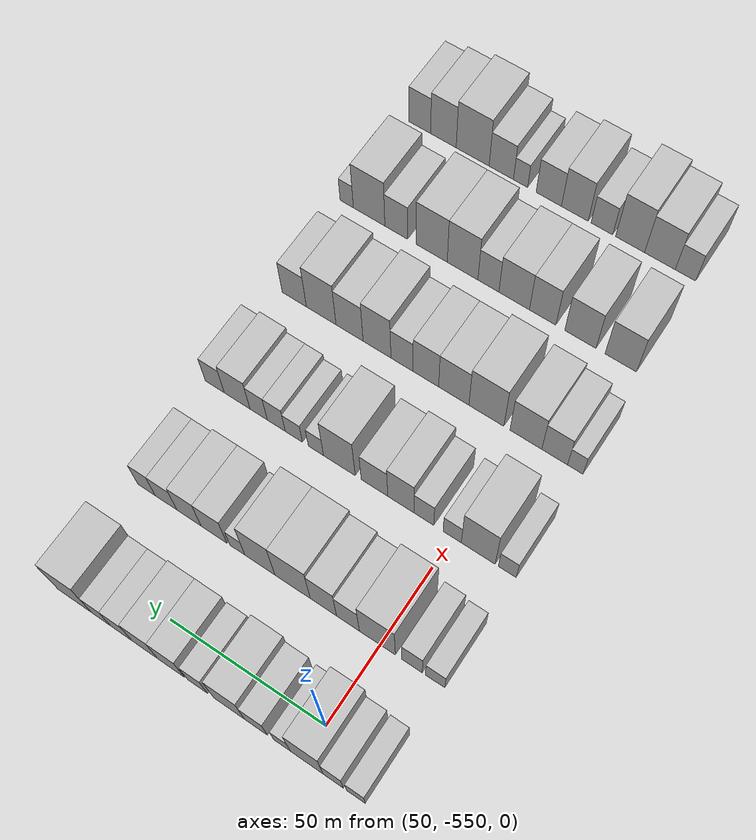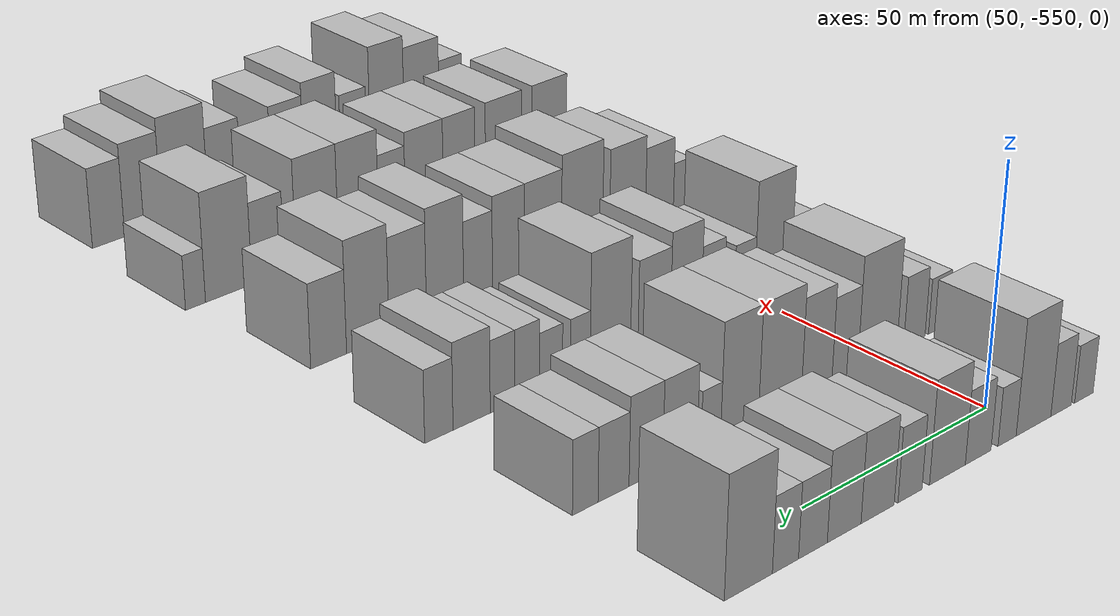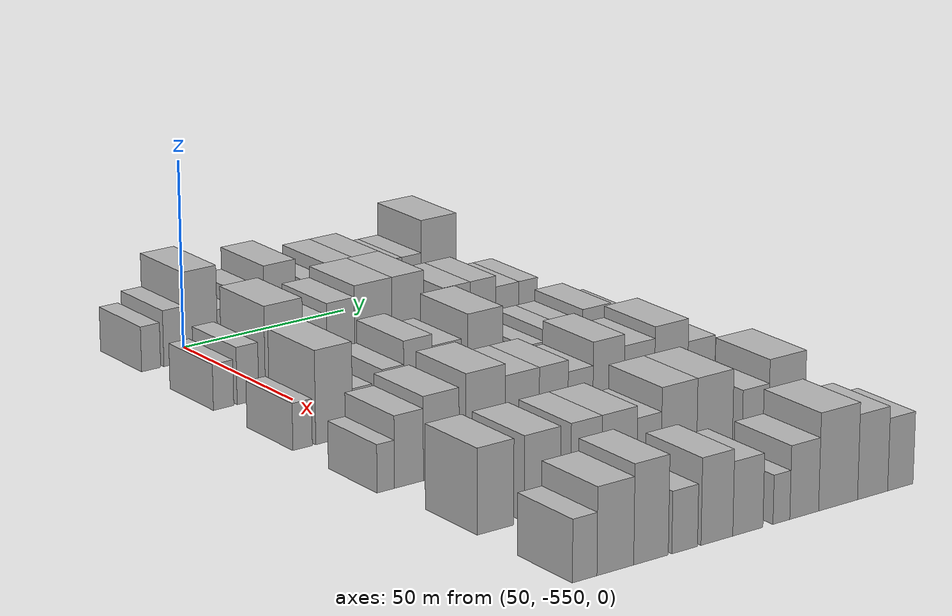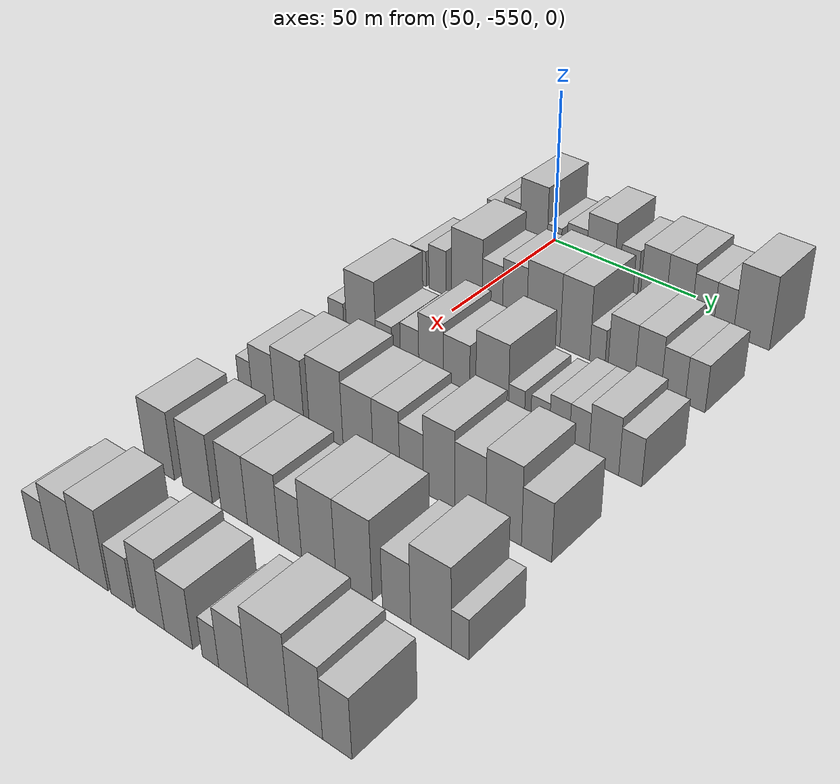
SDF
<sdf version="1.6">
 <world name="default">
  <model name="building_1">
   <static>1</static>
   <pose>50.0000 -566.1799 0 0.000000 0.000000 0.000000</pose>
   <link name="link">
    <pose>0 0 6.00 0 0 0</pose>
    <collision name="collision"><geometry><box><size>20.0000 5.6401 12.0000</size></box></geometry></collision>
    <visual name="visual">
     <cast_shadows>0</cast_shadows>
     <geometry><box><size>20.0000 5.6401 12.0000</size></box></geometry>
     <material>
      <script>
       <uri>model://HANNAS_wall/materials/scripts</uri>
       <uri>model://HANNAS_wall/materials/textures</uri>
       <name>vrc/HANNAS_wall</name>
      </script>
     </material>
    </visual>
   </link>
  </model>
  <model name="building_2">
   <static>1</static>
   <pose>50.0000 -559.2902 0 0.000000 0.000000 0.000000</pose>
   <link name="link">
    <pose>0 0 7.50 0 0 0</pose>
    <collision name="collision"><geometry><box><size>20.0000 6.1393 15.0000</size></box></geometry></collision>
    <visual name="visual">
     <cast_shadows>0</cast_shadows>
     <geometry><box><size>20.0000 6.1393 15.0000</size></box></geometry>
     <material>
      <script>
       <uri>model://HANNAS_wall/materials/scripts</uri>
       <uri>model://HANNAS_wall/materials/textures</uri>
       <name>vrc/HANNAS_wall</name>
      </script>
     </material>
    </visual>
   </link>
  </model>
  <model name="building_3">
   <static>1</static>
   <pose>50.0000 -551.1450 0 0.000000 0.000000 0.000000</pose>
   <link name="link">
    <pose>0 0 12.00 0 0 0</pose>
    <collision name="collision"><geometry><box><size>20.0000 10.1512 24.0000</size></box></geometry></collision>
    <visual name="visual">
     <cast_shadows>0</cast_shadows>
     <geometry><box><size>20.0000 10.1512 24.0000</size></box></geometry>
     <material>
      <script>
       <uri>model://HANNAS_wall/materials/scripts</uri>
       <uri>model://HANNAS_wall/materials/textures</uri>
       <name>vrc/HANNAS_wall</name>
      </script>
     </material>
    </visual>
   </link>
  </model>
  <model name="building_4">
   <static>1</static>
   <pose>50.0000 -543.4616 0 0.000000 0.000000 0.000000</pose>
   <link name="link">
    <pose>0 0 6.00 0 0 0</pose>
    <collision name="collision"><geometry><box><size>20.0000 5.2155 12.0000</size></box></geometry></collision>
    <visual name="visual">
     <cast_shadows>0</cast_shadows>
     <geometry><box><size>20.0000 5.2155 12.0000</size></box></geometry>
     <material>
      <script>
       <uri>model://HANNAS_wall/materials/scripts</uri>
       <uri>model://HANNAS_wall/materials/textures</uri>
       <name>vrc/HANNAS_wall</name>
      </script>
     </material>
    </visual>
   </link>
  </model>
  <model name="building_5">
   <static>1</static>
   <pose>50.0000 -535.2518 0 0.000000 0.000000 0.000000</pose>
   <link name="link">
    <pose>0 0 7.50 0 0 0</pose>
    <collision name="collision"><geometry><box><size>20.0000 7.2042 15.0000</size></box></geometry></collision>
    <visual name="visual">
     <cast_shadows>0</cast_shadows>
     <geometry><box><size>20.0000 7.2042 15.0000</size></box></geometry>
     <material>
      <script>
       <uri>model://HANNAS_wall/materials/scripts</uri>
       <uri>model://HANNAS_wall/materials/textures</uri>
       <name>vrc/HANNAS_wall</name>
      </script>
     </material>
    </visual>
   </link>
  </model>
  <model name="building_6">
   <static>1</static>
   <pose>50.0000 -526.7217 0 0.000000 0.000000 0.000000</pose>
   <link name="link">
    <pose>0 0 10.50 0 0 0</pose>
    <collision name="collision"><geometry><box><size>20.0000 9.8559 21.0000</size></box></geometry></collision>
    <visual name="visual">
     <cast_shadows>0</cast_shadows>
     <geometry><box><size>20.0000 9.8559 21.0000</size></box></geometry>
     <material>
      <script>
       <uri>model://HANNAS_wall/materials/scripts</uri>
       <uri>model://HANNAS_wall/materials/textures</uri>
       <name>vrc/HANNAS_wall</name>
      </script>
     </material>
    </visual>
   </link>
  </model>
  <model name="building_7">
   <static>1</static>
   <pose>50.0000 -516.5821 0 0.000000 0.000000 0.000000</pose>
   <link name="link">
    <pose>0 0 7.50 0 0 0</pose>
    <collision name="collision"><geometry><box><size>20.0000 6.4233 15.0000</size></box></geometry></collision>
    <visual name="visual">
     <cast_shadows>0</cast_shadows>
     <geometry><box><size>20.0000 6.4233 15.0000</size></box></geometry>
     <material>
      <script>
       <uri>model://HANNAS_wall/materials/scripts</uri>
       <uri>model://HANNAS_wall/materials/textures</uri>
       <name>vrc/HANNAS_wall</name>
      </script>
     </material>
    </visual>
   </link>
  </model>
  <model name="building_8">
   <static>1</static>
   <pose>50.0000 -508.0440 0 0.000000 0.000000 0.000000</pose>
   <link name="link">
    <pose>0 0 9.00 0 0 0</pose>
    <collision name="collision"><geometry><box><size>20.0000 8.6530 18.0000</size></box></geometry></collision>
    <visual name="visual">
     <cast_shadows>0</cast_shadows>
     <geometry><box><size>20.0000 8.6530 18.0000</size></box></geometry>
     <material>
      <script>
       <uri>model://HANNAS_wall/materials/scripts</uri>
       <uri>model://HANNAS_wall/materials/textures</uri>
       <name>vrc/HANNAS_wall</name>
      </script>
     </material>
    </visual>
   </link>
  </model>
  <model name="building_9">
   <static>1</static>
   <pose>50.0000 -499.4215 0 0.000000 0.000000 0.000000</pose>
   <link name="link">
    <pose>0 0 9.00 0 0 0</pose>
    <collision name="collision"><geometry><box><size>20.0000 8.5920 18.0000</size></box></geometry></collision>
    <visual name="visual">
     <cast_shadows>0</cast_shadows>
     <geometry><box><size>20.0000 8.5920 18.0000</size></box></geometry>
     <material>
      <script>
       <uri>model://HANNAS_wall/materials/scripts</uri>
       <uri>model://HANNAS_wall/materials/textures</uri>
       <name>vrc/HANNAS_wall</name>
      </script>
     </material>
    </visual>
   </link>
  </model>
  <model name="building_10">
   <static>1</static>
   <pose>50.0000 -491.5432 0 0.000000 0.000000 0.000000</pose>
   <link name="link">
    <pose>0 0 7.50 0 0 0</pose>
    <collision name="collision"><geometry><box><size>20.0000 7.1645 15.0000</size></box></geometry></collision>
    <visual name="visual">
     <cast_shadows>0</cast_shadows>
     <geometry><box><size>20.0000 7.1645 15.0000</size></box></geometry>
     <material>
      <script>
       <uri>model://HANNAS_wall/materials/scripts</uri>
       <uri>model://HANNAS_wall/materials/textures</uri>
       <name>vrc/HANNAS_wall</name>
      </script>
     </material>
    </visual>
   </link>
  </model>
  <model name="building_11">
   <static>1</static>
   <pose>50.0000 -484.7730 0 0.000000 0.000000 0.000000</pose>
   <link name="link">
    <pose>0 0 7.50 0 0 0</pose>
    <collision name="collision"><geometry><box><size>20.0000 6.3760 15.0000</size></box></geometry></collision>
    <visual name="visual">
     <cast_shadows>0</cast_shadows>
     <geometry><box><size>20.0000 6.3760 15.0000</size></box></geometry>
     <material>
      <script>
       <uri>model://HANNAS_wall/materials/scripts</uri>
       <uri>model://HANNAS_wall/materials/textures</uri>
       <name>vrc/HANNAS_wall</name>
      </script>
     </material>
    </visual>
   </link>
  </model>
  <model name="building_12">
   <static>1</static>
   <pose>50.0000 -475.8655 0 0.000000 0.000000 0.000000</pose>
   <link name="link">
    <pose>0 0 12.00 0 0 0</pose>
    <collision name="collision"><geometry><box><size>20.0000 11.4389 24.0000</size></box></geometry></collision>
    <visual name="visual">
     <cast_shadows>0</cast_shadows>
     <geometry><box><size>20.0000 11.4389 24.0000</size></box></geometry>
     <material>
      <script>
       <uri>model://HANNAS_wall/materials/scripts</uri>
       <uri>model://HANNAS_wall/materials/textures</uri>
       <name>vrc/HANNAS_wall</name>
      </script>
     </material>
    </visual>
   </link>
  </model>
  <model name="building_129">
   <static>1</static>
   <pose>85.0000 -567.0119 0 0.000000 0.000000 0.000000</pose>
   <link name="link">
    <pose>0 0 6.00 0 0 0</pose>
    <collision name="collision"><geometry><box><size>20.0000 5.9761 12.0000</size></box></geometry></collision>
    <visual name="visual">
     <cast_shadows>0</cast_shadows>
     <geometry><box><size>20.0000 5.9761 12.0000</size></box></geometry>
     <material>
      <script>
       <uri>model://HANNAS_wall/materials/scripts</uri>
       <uri>model://HANNAS_wall/materials/textures</uri>
       <name>vrc/HANNAS_wall</name>
      </script>
     </material>
    </visual>
   </link>
  </model>
  <model name="building_130">
   <static>1</static>
   <pose>85.0000 -559.8235 0 0.000000 0.000000 0.000000</pose>
   <link name="link">
    <pose>0 0 7.50 0 0 0</pose>
    <collision name="collision"><geometry><box><size>20.0000 6.4009 15.0000</size></box></geometry></collision>
    <visual name="visual">
     <cast_shadows>0</cast_shadows>
     <geometry><box><size>20.0000 6.4009 15.0000</size></box></geometry>
     <material>
      <script>
       <uri>model://HANNAS_wall/materials/scripts</uri>
       <uri>model://HANNAS_wall/materials/textures</uri>
       <name>vrc/HANNAS_wall</name>
      </script>
     </material>
    </visual>
   </link>
  </model>
  <model name="building_131">
   <static>1</static>
   <pose>85.0000 -548.9372 0 0.000000 0.000000 0.000000</pose>
   <link name="link">
    <pose>0 0 12.00 0 0 0</pose>
    <collision name="collision"><geometry><box><size>20.0000 11.3717 24.0000</size></box></geometry></collision>
    <visual name="visual">
     <cast_shadows>0</cast_shadows>
     <geometry><box><size>20.0000 11.3717 24.0000</size></box></geometry>
     <material>
      <script>
       <uri>model://HANNAS_wall/materials/scripts</uri>
       <uri>model://HANNAS_wall/materials/textures</uri>
       <name>vrc/HANNAS_wall</name>
      </script>
     </material>
    </visual>
   </link>
  </model>
  <model name="building_132">
   <static>1</static>
   <pose>85.0000 -539.6117 0 0.000000 0.000000 0.000000</pose>
   <link name="link">
    <pose>0 0 9.00 0 0 0</pose>
    <collision name="collision"><geometry><box><size>20.0000 7.2792 18.0000</size></box></geometry></collision>
    <visual name="visual">
     <cast_shadows>0</cast_shadows>
     <geometry><box><size>20.0000 7.2792 18.0000</size></box></geometry>
     <material>
      <script>
       <uri>model://HANNAS_wall/materials/scripts</uri>
       <uri>model://HANNAS_wall/materials/textures</uri>
       <name>vrc/HANNAS_wall</name>
      </script>
     </material>
    </visual>
   </link>
  </model>
  <model name="building_133">
   <static>1</static>
   <pose>85.0000 -531.7372 0 0.000000 0.000000 0.000000</pose>
   <link name="link">
    <pose>0 0 10.50 0 0 0</pose>
    <collision name="collision"><geometry><box><size>20.0000 8.4700 21.0000</size></box></geometry></collision>
    <visual name="visual">
     <cast_shadows>0</cast_shadows>
     <geometry><box><size>20.0000 8.4700 21.0000</size></box></geometry>
     <material>
      <script>
       <uri>model://HANNAS_wall/materials/scripts</uri>
       <uri>model://HANNAS_wall/materials/textures</uri>
       <name>vrc/HANNAS_wall</name>
      </script>
     </material>
    </visual>
   </link>
  </model>
  <model name="building_134">
   <static>1</static>
   <pose>85.0000 -521.7231 0 0.000000 0.000000 0.000000</pose>
   <link name="link">
    <pose>0 0 12.00 0 0 0</pose>
    <collision name="collision"><geometry><box><size>20.0000 11.5580 24.0000</size></box></geometry></collision>
    <visual name="visual">
     <cast_shadows>0</cast_shadows>
     <geometry><box><size>20.0000 11.5580 24.0000</size></box></geometry>
     <material>
      <script>
       <uri>model://HANNAS_wall/materials/scripts</uri>
       <uri>model://HANNAS_wall/materials/textures</uri>
       <name>vrc/HANNAS_wall</name>
      </script>
     </material>
    </visual>
   </link>
  </model>
  <model name="building_135">
   <static>1</static>
   <pose>85.0000 -510.9765 0 0.000000 0.000000 0.000000</pose>
   <link name="link">
    <pose>0 0 12.00 0 0 0</pose>
    <collision name="collision"><geometry><box><size>20.0000 9.9353 24.0000</size></box></geometry></collision>
    <visual name="visual">
     <cast_shadows>0</cast_shadows>
     <geometry><box><size>20.0000 9.9353 24.0000</size></box></geometry>
     <material>
      <script>
       <uri>model://HANNAS_wall/materials/scripts</uri>
       <uri>model://HANNAS_wall/materials/textures</uri>
       <name>vrc/HANNAS_wall</name>
      </script>
     </material>
    </visual>
   </link>
  </model>
  <model name="building_136">
   <static>1</static>
   <pose>85.0000 -503.4930 0 0.000000 0.000000 0.000000</pose>
   <link name="link">
    <pose>0 0 6.00 0 0 0</pose>
    <collision name="collision"><geometry><box><size>20.0000 5.0316 12.0000</size></box></geometry></collision>
    <visual name="visual">
     <cast_shadows>0</cast_shadows>
     <geometry><box><size>20.0000 5.0316 12.0000</size></box></geometry>
     <material>
      <script>
       <uri>model://HANNAS_wall/materials/scripts</uri>
       <uri>model://HANNAS_wall/materials/textures</uri>
       <name>vrc/HANNAS_wall</name>
      </script>
     </material>
    </visual>
   </link>
  </model>
  <model name="building_137">
   <static>1</static>
   <pose>85.0000 -495.6421 0 0.000000 0.000000 0.000000</pose>
   <link name="link">
    <pose>0 0 9.00 0 0 0</pose>
    <collision name="collision"><geometry><box><size>20.0000 8.6703 18.0000</size></box></geometry></collision>
    <visual name="visual">
     <cast_shadows>0</cast_shadows>
     <geometry><box><size>20.0000 8.6703 18.0000</size></box></geometry>
     <material>
      <script>
       <uri>model://HANNAS_wall/materials/scripts</uri>
       <uri>model://HANNAS_wall/materials/textures</uri>
       <name>vrc/HANNAS_wall</name>
      </script>
     </material>
    </visual>
   </link>
  </model>
  <model name="building_138">
   <static>1</static>
   <pose>85.0000 -487.1656 0 0.000000 0.000000 0.000000</pose>
   <link name="link">
    <pose>0 0 9.00 0 0 0</pose>
    <collision name="collision"><geometry><box><size>20.0000 8.2827 18.0000</size></box></geometry></collision>
    <visual name="visual">
     <cast_shadows>0</cast_shadows>
     <geometry><box><size>20.0000 8.2827 18.0000</size></box></geometry>
     <material>
      <script>
       <uri>model://HANNAS_wall/materials/scripts</uri>
       <uri>model://HANNAS_wall/materials/textures</uri>
       <name>vrc/HANNAS_wall</name>
      </script>
     </material>
    </visual>
   </link>
  </model>
  <model name="building_139">
   <static>1</static>
   <pose>85.0000 -479.2963 0 0.000000 0.000000 0.000000</pose>
   <link name="link">
    <pose>0 0 7.50 0 0 0</pose>
    <collision name="collision"><geometry><box><size>20.0000 7.4559 15.0000</size></box></geometry></collision>
    <visual name="visual">
     <cast_shadows>0</cast_shadows>
     <geometry><box><size>20.0000 7.4559 15.0000</size></box></geometry>
     <material>
      <script>
       <uri>model://HANNAS_wall/materials/scripts</uri>
       <uri>model://HANNAS_wall/materials/textures</uri>
       <name>vrc/HANNAS_wall</name>
      </script>
     </material>
    </visual>
   </link>
  </model>
  <model name="building_140">
   <static>1</static>
   <pose>85.0000 -472.5360 0 0.000000 0.000000 0.000000</pose>
   <link name="link">
    <pose>0 0 7.50 0 0 0</pose>
    <collision name="collision"><geometry><box><size>20.0000 6.0648 15.0000</size></box></geometry></collision>
    <visual name="visual">
     <cast_shadows>0</cast_shadows>
     <geometry><box><size>20.0000 6.0648 15.0000</size></box></geometry>
     <material>
      <script>
       <uri>model://HANNAS_wall/materials/scripts</uri>
       <uri>model://HANNAS_wall/materials/textures</uri>
       <name>vrc/HANNAS_wall</name>
      </script>
     </material>
    </visual>
   </link>
  </model>
  <model name="building_255">
   <static>1</static>
   <pose>120.0000 -567.1916 0 0.000000 0.000000 0.000000</pose>
   <link name="link">
    <pose>0 0 6.00 0 0 0</pose>
    <collision name="collision"><geometry><box><size>20.0000 5.6168 12.0000</size></box></geometry></collision>
    <visual name="visual">
     <cast_shadows>0</cast_shadows>
     <geometry><box><size>20.0000 5.6168 12.0000</size></box></geometry>
     <material>
      <script>
       <uri>model://HANNAS_wall/materials/scripts</uri>
       <uri>model://HANNAS_wall/materials/textures</uri>
       <name>vrc/HANNAS_wall</name>
      </script>
     </material>
    </visual>
   </link>
  </model>
  <model name="building_256">
   <static>1</static>
   <pose>120.0000 -557.9877 0 0.000000 0.000000 0.000000</pose>
   <link name="link">
    <pose>0 0 12.00 0 0 0</pose>
    <collision name="collision"><geometry><box><size>20.0000 10.7910 24.0000</size></box></geometry></collision>
    <visual name="visual">
     <cast_shadows>0</cast_shadows>
     <geometry><box><size>20.0000 10.7910 24.0000</size></box></geometry>
     <material>
      <script>
       <uri>model://HANNAS_wall/materials/scripts</uri>
       <uri>model://HANNAS_wall/materials/textures</uri>
       <name>vrc/HANNAS_wall</name>
      </script>
     </material>
    </visual>
   </link>
  </model>
  <model name="building_257">
   <static>1</static>
   <pose>120.0000 -549.6639 0 0.000000 0.000000 0.000000</pose>
   <link name="link">
    <pose>0 0 6.00 0 0 0</pose>
    <collision name="collision"><geometry><box><size>20.0000 5.8565 12.0000</size></box></geometry></collision>
    <visual name="visual">
     <cast_shadows>0</cast_shadows>
     <geometry><box><size>20.0000 5.8565 12.0000</size></box></geometry>
     <material>
      <script>
       <uri>model://HANNAS_wall/materials/scripts</uri>
       <uri>model://HANNAS_wall/materials/textures</uri>
       <name>vrc/HANNAS_wall</name>
      </script>
     </material>
    </visual>
   </link>
  </model>
  <model name="building_258">
   <static>1</static>
   <pose>120.0000 -540.5153 0 0.000000 0.000000 0.000000</pose>
   <link name="link">
    <pose>0 0 7.50 0 0 0</pose>
    <collision name="collision"><geometry><box><size>20.0000 6.4407 15.0000</size></box></geometry></collision>
    <visual name="visual">
     <cast_shadows>0</cast_shadows>
     <geometry><box><size>20.0000 6.4407 15.0000</size></box></geometry>
     <material>
      <script>
       <uri>model://HANNAS_wall/materials/scripts</uri>
       <uri>model://HANNAS_wall/materials/textures</uri>
       <name>vrc/HANNAS_wall</name>
      </script>
     </material>
    </visual>
   </link>
  </model>
  <model name="building_259">
   <static>1</static>
   <pose>120.0000 -532.9971 0 0.000000 0.000000 0.000000</pose>
   <link name="link">
    <pose>0 0 10.50 0 0 0</pose>
    <collision name="collision"><geometry><box><size>20.0000 8.5956 21.0000</size></box></geometry></collision>
    <visual name="visual">
     <cast_shadows>0</cast_shadows>
     <geometry><box><size>20.0000 8.5956 21.0000</size></box></geometry>
     <material>
      <script>
       <uri>model://HANNAS_wall/materials/scripts</uri>
       <uri>model://HANNAS_wall/materials/textures</uri>
       <name>vrc/HANNAS_wall</name>
      </script>
     </material>
    </visual>
   </link>
  </model>
  <model name="building_260">
   <static>1</static>
   <pose>120.0000 -524.2918 0 0.000000 0.000000 0.000000</pose>
   <link name="link">
    <pose>0 0 9.00 0 0 0</pose>
    <collision name="collision"><geometry><box><size>20.0000 8.8151 18.0000</size></box></geometry></collision>
    <visual name="visual">
     <cast_shadows>0</cast_shadows>
     <geometry><box><size>20.0000 8.8151 18.0000</size></box></geometry>
     <material>
      <script>
       <uri>model://HANNAS_wall/materials/scripts</uri>
       <uri>model://HANNAS_wall/materials/textures</uri>
       <name>vrc/HANNAS_wall</name>
      </script>
     </material>
    </visual>
   </link>
  </model>
  <model name="building_261">
   <static>1</static>
   <pose>120.0000 -512.5568 0 0.000000 0.000000 0.000000</pose>
   <link name="link">
    <pose>0 0 12.00 0 0 0</pose>
    <collision name="collision"><geometry><box><size>20.0000 10.6549 24.0000</size></box></geometry></collision>
    <visual name="visual">
     <cast_shadows>0</cast_shadows>
     <geometry><box><size>20.0000 10.6549 24.0000</size></box></geometry>
     <material>
      <script>
       <uri>model://HANNAS_wall/materials/scripts</uri>
       <uri>model://HANNAS_wall/materials/textures</uri>
       <name>vrc/HANNAS_wall</name>
      </script>
     </material>
    </visual>
   </link>
  </model>
  <model name="building_262">
   <static>1</static>
   <pose>120.0000 -504.6463 0 0.000000 0.000000 0.000000</pose>
   <link name="link">
    <pose>0 0 6.00 0 0 0</pose>
    <collision name="collision"><geometry><box><size>20.0000 5.1661 12.0000</size></box></geometry></collision>
    <visual name="visual">
     <cast_shadows>0</cast_shadows>
     <geometry><box><size>20.0000 5.1661 12.0000</size></box></geometry>
     <material>
      <script>
       <uri>model://HANNAS_wall/materials/scripts</uri>
       <uri>model://HANNAS_wall/materials/textures</uri>
       <name>vrc/HANNAS_wall</name>
      </script>
     </material>
    </visual>
   </link>
  </model>
  <model name="building_263">
   <static>1</static>
   <pose>120.0000 -497.1237 0 0.000000 0.000000 0.000000</pose>
   <link name="link">
    <pose>0 0 6.00 0 0 0</pose>
    <collision name="collision"><geometry><box><size>20.0000 5.8791 12.0000</size></box></geometry></collision>
    <visual name="visual">
     <cast_shadows>0</cast_shadows>
     <geometry><box><size>20.0000 5.8791 12.0000</size></box></geometry>
     <material>
      <script>
       <uri>model://HANNAS_wall/materials/scripts</uri>
       <uri>model://HANNAS_wall/materials/textures</uri>
       <name>vrc/HANNAS_wall</name>
      </script>
     </material>
    </visual>
   </link>
  </model>
  <model name="building_264">
   <static>1</static>
   <pose>120.0000 -491.0988 0 0.000000 0.000000 0.000000</pose>
   <link name="link">
    <pose>0 0 7.50 0 0 0</pose>
    <collision name="collision"><geometry><box><size>20.0000 6.1707 15.0000</size></box></geometry></collision>
    <visual name="visual">
     <cast_shadows>0</cast_shadows>
     <geometry><box><size>20.0000 6.1707 15.0000</size></box></geometry>
     <material>
      <script>
       <uri>model://HANNAS_wall/materials/scripts</uri>
       <uri>model://HANNAS_wall/materials/textures</uri>
       <name>vrc/HANNAS_wall</name>
      </script>
     </material>
    </visual>
   </link>
  </model>
  <model name="building_265">
   <static>1</static>
   <pose>120.0000 -484.9998 0 0.000000 0.000000 0.000000</pose>
   <link name="link">
    <pose>0 0 7.50 0 0 0</pose>
    <collision name="collision"><geometry><box><size>20.0000 6.0273 15.0000</size></box></geometry></collision>
    <visual name="visual">
     <cast_shadows>0</cast_shadows>
     <geometry><box><size>20.0000 6.0273 15.0000</size></box></geometry>
     <material>
      <script>
       <uri>model://HANNAS_wall/materials/scripts</uri>
       <uri>model://HANNAS_wall/materials/textures</uri>
       <name>vrc/HANNAS_wall</name>
      </script>
     </material>
    </visual>
   </link>
  </model>
  <model name="building_266">
   <static>1</static>
   <pose>120.0000 -477.4928 0 0.000000 0.000000 0.000000</pose>
   <link name="link">
    <pose>0 0 9.00 0 0 0</pose>
    <collision name="collision"><geometry><box><size>20.0000 8.9868 18.0000</size></box></geometry></collision>
    <visual name="visual">
     <cast_shadows>0</cast_shadows>
     <geometry><box><size>20.0000 8.9868 18.0000</size></box></geometry>
     <material>
      <script>
       <uri>model://HANNAS_wall/materials/scripts</uri>
       <uri>model://HANNAS_wall/materials/textures</uri>
       <name>vrc/HANNAS_wall</name>
      </script>
     </material>
    </visual>
   </link>
  </model>
  <model name="building_267">
   <static>1</static>
   <pose>120.0000 -469.6376 0 0.000000 0.000000 0.000000</pose>
   <link name="link">
    <pose>0 0 7.50 0 0 0</pose>
    <collision name="collision"><geometry><box><size>20.0000 6.7234 15.0000</size></box></geometry></collision>
    <visual name="visual">
     <cast_shadows>0</cast_shadows>
     <geometry><box><size>20.0000 6.7234 15.0000</size></box></geometry>
     <material>
      <script>
       <uri>model://HANNAS_wall/materials/scripts</uri>
       <uri>model://HANNAS_wall/materials/textures</uri>
       <name>vrc/HANNAS_wall</name>
      </script>
     </material>
    </visual>
   </link>
  </model>
  <model name="building_383">
   <static>1</static>
   <pose>155.0000 -567.5159 0 0.000000 0.000000 0.000000</pose>
   <link name="link">
    <pose>0 0 6.00 0 0 0</pose>
    <collision name="collision"><geometry><box><size>20.0000 4.9682 12.0000</size></box></geometry></collision>
    <visual name="visual">
     <cast_shadows>0</cast_shadows>
     <geometry><box><size>20.0000 4.9682 12.0000</size></box></geometry>
     <material>
      <script>
       <uri>model://HANNAS_wall/materials/scripts</uri>
       <uri>model://HANNAS_wall/materials/textures</uri>
       <name>vrc/HANNAS_wall</name>
      </script>
     </material>
    </visual>
   </link>
  </model>
  <model name="building_384">
   <static>1</static>
   <pose>155.0000 -560.8657 0 0.000000 0.000000 0.000000</pose>
   <link name="link">
    <pose>0 0 9.00 0 0 0</pose>
    <collision name="collision"><geometry><box><size>20.0000 8.3322 18.0000</size></box></geometry></collision>
    <visual name="visual">
     <cast_shadows>0</cast_shadows>
     <geometry><box><size>20.0000 8.3322 18.0000</size></box></geometry>
     <material>
      <script>
       <uri>model://HANNAS_wall/materials/scripts</uri>
       <uri>model://HANNAS_wall/materials/textures</uri>
       <name>vrc/HANNAS_wall</name>
      </script>
     </material>
    </visual>
   </link>
  </model>
  <model name="building_385">
   <static>1</static>
   <pose>155.0000 -551.5004 0 0.000000 0.000000 0.000000</pose>
   <link name="link">
    <pose>0 0 10.50 0 0 0</pose>
    <collision name="collision"><geometry><box><size>20.0000 10.3984 21.0000</size></box></geometry></collision>
    <visual name="visual">
     <cast_shadows>0</cast_shadows>
     <geometry><box><size>20.0000 10.3984 21.0000</size></box></geometry>
     <material>
      <script>
       <uri>model://HANNAS_wall/materials/scripts</uri>
       <uri>model://HANNAS_wall/materials/textures</uri>
       <name>vrc/HANNAS_wall</name>
      </script>
     </material>
    </visual>
   </link>
  </model>
  <model name="building_386">
   <static>1</static>
   <pose>155.0000 -538.4948 0 0.000000 0.000000 0.000000</pose>
   <link name="link">
    <pose>0 0 12.00 0 0 0</pose>
    <collision name="collision"><geometry><box><size>20.0000 11.6129 24.0000</size></box></geometry></collision>
    <visual name="visual">
     <cast_shadows>0</cast_shadows>
     <geometry><box><size>20.0000 11.6129 24.0000</size></box></geometry>
     <material>
      <script>
       <uri>model://HANNAS_wall/materials/scripts</uri>
       <uri>model://HANNAS_wall/materials/textures</uri>
       <name>vrc/HANNAS_wall</name>
      </script>
     </material>
    </visual>
   </link>
  </model>
  <model name="building_387">
   <static>1</static>
   <pose>155.0000 -527.6122 0 0.000000 0.000000 0.000000</pose>
   <link name="link">
    <pose>0 0 10.50 0 0 0</pose>
    <collision name="collision"><geometry><box><size>20.0000 10.1523 21.0000</size></box></geometry></collision>
    <visual name="visual">
     <cast_shadows>0</cast_shadows>
     <geometry><box><size>20.0000 10.1523 21.0000</size></box></geometry>
     <material>
      <script>
       <uri>model://HANNAS_wall/materials/scripts</uri>
       <uri>model://HANNAS_wall/materials/textures</uri>
       <name>vrc/HANNAS_wall</name>
      </script>
     </material>
    </visual>
   </link>
  </model>
  <model name="building_388">
   <static>1</static>
   <pose>155.0000 -518.1948 0 0.000000 0.000000 0.000000</pose>
   <link name="link">
    <pose>0 0 10.50 0 0 0</pose>
    <collision name="collision"><geometry><box><size>20.0000 8.6826 21.0000</size></box></geometry></collision>
    <visual name="visual">
     <cast_shadows>0</cast_shadows>
     <geometry><box><size>20.0000 8.6826 21.0000</size></box></geometry>
     <material>
      <script>
       <uri>model://HANNAS_wall/materials/scripts</uri>
       <uri>model://HANNAS_wall/materials/textures</uri>
       <name>vrc/HANNAS_wall</name>
      </script>
     </material>
    </visual>
   </link>
  </model>
  <model name="building_389">
   <static>1</static>
   <pose>155.0000 -510.0507 0 0.000000 0.000000 0.000000</pose>
   <link name="link">
    <pose>0 0 9.00 0 0 0</pose>
    <collision name="collision"><geometry><box><size>20.0000 7.6055 18.0000</size></box></geometry></collision>
    <visual name="visual">
     <cast_shadows>0</cast_shadows>
     <geometry><box><size>20.0000 7.6055 18.0000</size></box></geometry>
     <material>
      <script>
       <uri>model://HANNAS_wall/materials/scripts</uri>
       <uri>model://HANNAS_wall/materials/textures</uri>
       <name>vrc/HANNAS_wall</name>
      </script>
     </material>
    </visual>
   </link>
  </model>
  <model name="building_390">
   <static>1</static>
   <pose>155.0000 -501.4252 0 0.000000 0.000000 0.000000</pose>
   <link name="link">
    <pose>0 0 12.00 0 0 0</pose>
    <collision name="collision"><geometry><box><size>20.0000 9.6455 24.0000</size></box></geometry></collision>
    <visual name="visual">
     <cast_shadows>0</cast_shadows>
     <geometry><box><size>20.0000 9.6455 24.0000</size></box></geometry>
     <material>
      <script>
       <uri>model://HANNAS_wall/materials/scripts</uri>
       <uri>model://HANNAS_wall/materials/textures</uri>
       <name>vrc/HANNAS_wall</name>
      </script>
     </material>
    </visual>
   </link>
  </model>
  <model name="building_391">
   <static>1</static>
   <pose>155.0000 -491.8674 0 0.000000 0.000000 0.000000</pose>
   <link name="link">
    <pose>0 0 10.50 0 0 0</pose>
    <collision name="collision"><geometry><box><size>20.0000 9.4701 21.0000</size></box></geometry></collision>
    <visual name="visual">
     <cast_shadows>0</cast_shadows>
     <geometry><box><size>20.0000 9.4701 21.0000</size></box></geometry>
     <material>
      <script>
       <uri>model://HANNAS_wall/materials/scripts</uri>
       <uri>model://HANNAS_wall/materials/textures</uri>
       <name>vrc/HANNAS_wall</name>
      </script>
     </material>
    </visual>
   </link>
  </model>
  <model name="building_392">
   <static>1</static>
   <pose>155.0000 -481.8805 0 0.000000 0.000000 0.000000</pose>
   <link name="link">
    <pose>0 0 12.00 0 0 0</pose>
    <collision name="collision"><geometry><box><size>20.0000 10.5036 24.0000</size></box></geometry></collision>
    <visual name="visual">
     <cast_shadows>0</cast_shadows>
     <geometry><box><size>20.0000 10.5036 24.0000</size></box></geometry>
     <material>
      <script>
       <uri>model://HANNAS_wall/materials/scripts</uri>
       <uri>model://HANNAS_wall/materials/textures</uri>
       <name>vrc/HANNAS_wall</name>
      </script>
     </material>
    </visual>
   </link>
  </model>
  <model name="building_393">
   <static>1</static>
   <pose>155.0000 -472.2995 0 0.000000 0.000000 0.000000</pose>
   <link name="link">
    <pose>0 0 9.00 0 0 0</pose>
    <collision name="collision"><geometry><box><size>20.0000 8.6585 18.0000</size></box></geometry></collision>
    <visual name="visual">
     <cast_shadows>0</cast_shadows>
     <geometry><box><size>20.0000 8.6585 18.0000</size></box></geometry>
     <material>
      <script>
       <uri>model://HANNAS_wall/materials/scripts</uri>
       <uri>model://HANNAS_wall/materials/textures</uri>
       <name>vrc/HANNAS_wall</name>
      </script>
     </material>
    </visual>
   </link>
  </model>
  <model name="building_512">
   <static>1</static>
   <pose>190.0000 -561.8138 0 0.000000 0.000000 0.000000</pose>
   <link name="link">
    <pose>0 0 10.50 0 0 0</pose>
    <collision name="collision"><geometry><box><size>20.0000 10.3724 21.0000</size></box></geometry></collision>
    <visual name="visual">
     <cast_shadows>0</cast_shadows>
     <geometry><box><size>20.0000 10.3724 21.0000</size></box></geometry>
     <material>
      <script>
       <uri>model://HANNAS_wall/materials/scripts</uri>
       <uri>model://HANNAS_wall/materials/textures</uri>
       <name>vrc/HANNAS_wall</name>
      </script>
     </material>
    </visual>
   </link>
  </model>
  <model name="building_513">
   <static>1</static>
   <pose>190.0000 -548.4078 0 0.000000 0.000000 0.000000</pose>
   <link name="link">
    <pose>0 0 10.50 0 0 0</pose>
    <collision name="collision"><geometry><box><size>20.0000 10.4396 21.0000</size></box></geometry></collision>
    <visual name="visual">
     <cast_shadows>0</cast_shadows>
     <geometry><box><size>20.0000 10.4396 21.0000</size></box></geometry>
     <material>
      <script>
       <uri>model://HANNAS_wall/materials/scripts</uri>
       <uri>model://HANNAS_wall/materials/textures</uri>
       <name>vrc/HANNAS_wall</name>
      </script>
     </material>
    </visual>
   </link>
  </model>
  <model name="building_514">
   <static>1</static>
   <pose>190.0000 -535.7051 0 0.000000 0.000000 0.000000</pose>
   <link name="link">
    <pose>0 0 10.50 0 0 0</pose>
    <collision name="collision"><geometry><box><size>20.0000 8.9657 21.0000</size></box></geometry></collision>
    <visual name="visual">
     <cast_shadows>0</cast_shadows>
     <geometry><box><size>20.0000 8.9657 21.0000</size></box></geometry>
     <material>
      <script>
       <uri>model://HANNAS_wall/materials/scripts</uri>
       <uri>model://HANNAS_wall/materials/textures</uri>
       <name>vrc/HANNAS_wall</name>
      </script>
     </material>
    </visual>
   </link>
  </model>
  <model name="building_515">
   <static>1</static>
   <pose>190.0000 -525.9869 0 0.000000 0.000000 0.000000</pose>
   <link name="link">
    <pose>0 0 10.50 0 0 0</pose>
    <collision name="collision"><geometry><box><size>20.0000 10.4709 21.0000</size></box></geometry></collision>
    <visual name="visual">
     <cast_shadows>0</cast_shadows>
     <geometry><box><size>20.0000 10.4709 21.0000</size></box></geometry>
     <material>
      <script>
       <uri>model://HANNAS_wall/materials/scripts</uri>
       <uri>model://HANNAS_wall/materials/textures</uri>
       <name>vrc/HANNAS_wall</name>
      </script>
     </material>
    </visual>
   </link>
  </model>
  <model name="building_516">
   <static>1</static>
   <pose>190.0000 -517.1226 0 0.000000 0.000000 0.000000</pose>
   <link name="link">
    <pose>0 0 9.00 0 0 0</pose>
    <collision name="collision"><geometry><box><size>20.0000 7.2576 18.0000</size></box></geometry></collision>
    <visual name="visual">
     <cast_shadows>0</cast_shadows>
     <geometry><box><size>20.0000 7.2576 18.0000</size></box></geometry>
     <material>
      <script>
       <uri>model://HANNAS_wall/materials/scripts</uri>
       <uri>model://HANNAS_wall/materials/textures</uri>
       <name>vrc/HANNAS_wall</name>
      </script>
     </material>
    </visual>
   </link>
  </model>
  <model name="building_517">
   <static>1</static>
   <pose>190.0000 -508.1320 0 0.000000 0.000000 0.000000</pose>
   <link name="link">
    <pose>0 0 12.00 0 0 0</pose>
    <collision name="collision"><geometry><box><size>20.0000 10.7237 24.0000</size></box></geometry></collision>
    <visual name="visual">
     <cast_shadows>0</cast_shadows>
     <geometry><box><size>20.0000 10.7237 24.0000</size></box></geometry>
     <material>
      <script>
       <uri>model://HANNAS_wall/materials/scripts</uri>
       <uri>model://HANNAS_wall/materials/textures</uri>
       <name>vrc/HANNAS_wall</name>
      </script>
     </material>
    </visual>
   </link>
  </model>
  <model name="building_518">
   <static>1</static>
   <pose>190.0000 -497.2683 0 0.000000 0.000000 0.000000</pose>
   <link name="link">
    <pose>0 0 12.00 0 0 0</pose>
    <collision name="collision"><geometry><box><size>20.0000 11.0037 24.0000</size></box></geometry></collision>
    <visual name="visual">
     <cast_shadows>0</cast_shadows>
     <geometry><box><size>20.0000 11.0037 24.0000</size></box></geometry>
     <material>
      <script>
       <uri>model://HANNAS_wall/materials/scripts</uri>
       <uri>model://HANNAS_wall/materials/textures</uri>
       <name>vrc/HANNAS_wall</name>
      </script>
     </material>
    </visual>
   </link>
  </model>
  <model name="building_519">
   <static>1</static>
   <pose>190.0000 -484.6715 0 0.000000 0.000000 0.000000</pose>
   <link name="link">
    <pose>0 0 9.00 0 0 0</pose>
    <collision name="collision"><geometry><box><size>20.0000 8.1900 18.0000</size></box></geometry></collision>
    <visual name="visual">
     <cast_shadows>0</cast_shadows>
     <geometry><box><size>20.0000 8.1900 18.0000</size></box></geometry>
     <material>
      <script>
       <uri>model://HANNAS_wall/materials/scripts</uri>
       <uri>model://HANNAS_wall/materials/textures</uri>
       <name>vrc/HANNAS_wall</name>
      </script>
     </material>
    </visual>
   </link>
  </model>
  <model name="building_520">
   <static>1</static>
   <pose>190.0000 -474.8509 0 0.000000 0.000000 0.000000</pose>
   <link name="link">
    <pose>0 0 12.00 0 0 0</pose>
    <collision name="collision"><geometry><box><size>20.0000 11.4512 24.0000</size></box></geometry></collision>
    <visual name="visual">
     <cast_shadows>0</cast_shadows>
     <geometry><box><size>20.0000 11.4512 24.0000</size></box></geometry>
     <material>
      <script>
       <uri>model://HANNAS_wall/materials/scripts</uri>
       <uri>model://HANNAS_wall/materials/textures</uri>
       <name>vrc/HANNAS_wall</name>
      </script>
     </material>
    </visual>
   </link>
  </model>
  <model name="building_521">
   <static>1</static>
   <pose>190.0000 -466.7071 0 0.000000 0.000000 0.000000</pose>
   <link name="link">
    <pose>0 0 6.00 0 0 0</pose>
    <collision name="collision"><geometry><box><size>20.0000 4.8364 12.0000</size></box></geometry></collision>
    <visual name="visual">
     <cast_shadows>0</cast_shadows>
     <geometry><box><size>20.0000 4.8364 12.0000</size></box></geometry>
     <material>
      <script>
       <uri>model://HANNAS_wall/materials/scripts</uri>
       <uri>model://HANNAS_wall/materials/textures</uri>
       <name>vrc/HANNAS_wall</name>
      </script>
     </material>
    </visual>
   </link>
  </model>
  <model name="building_634">
   <static>1</static>
   <pose>225.0000 -563.5752 0 0.000000 0.000000 0.000000</pose>
   <link name="link">
    <pose>0 0 7.50 0 0 0</pose>
    <collision name="collision"><geometry><box><size>20.0000 6.8496 15.0000</size></box></geometry></collision>
    <visual name="visual">
     <cast_shadows>0</cast_shadows>
     <geometry><box><size>20.0000 6.8496 15.0000</size></box></geometry>
     <material>
      <script>
       <uri>model://HANNAS_wall/materials/scripts</uri>
       <uri>model://HANNAS_wall/materials/textures</uri>
       <name>vrc/HANNAS_wall</name>
      </script>
     </material>
    </visual>
   </link>
  </model>
  <model name="building_635">
   <static>1</static>
   <pose>225.0000 -554.9680 0 0.000000 0.000000 0.000000</pose>
   <link name="link">
    <pose>0 0 10.50 0 0 0</pose>
    <collision name="collision"><geometry><box><size>20.0000 10.3649 21.0000</size></box></geometry></collision>
    <visual name="visual">
     <cast_shadows>0</cast_shadows>
     <geometry><box><size>20.0000 10.3649 21.0000</size></box></geometry>
     <material>
      <script>
       <uri>model://HANNAS_wall/materials/scripts</uri>
       <uri>model://HANNAS_wall/materials/textures</uri>
       <name>vrc/HANNAS_wall</name>
      </script>
     </material>
    </visual>
   </link>
  </model>
  <model name="building_636">
   <static>1</static>
   <pose>225.0000 -544.8367 0 0.000000 0.000000 0.000000</pose>
   <link name="link">
    <pose>0 0 12.00 0 0 0</pose>
    <collision name="collision"><geometry><box><size>20.0000 9.8976 24.0000</size></box></geometry></collision>
    <visual name="visual">
     <cast_shadows>0</cast_shadows>
     <geometry><box><size>20.0000 9.8976 24.0000</size></box></geometry>
     <material>
      <script>
       <uri>model://HANNAS_wall/materials/scripts</uri>
       <uri>model://HANNAS_wall/materials/textures</uri>
       <name>vrc/HANNAS_wall</name>
      </script>
     </material>
    </visual>
   </link>
  </model>
  <model name="building_637">
   <static>1</static>
   <pose>225.0000 -535.1566 0 0.000000 0.000000 0.000000</pose>
   <link name="link">
    <pose>0 0 7.50 0 0 0</pose>
    <collision name="collision"><geometry><box><size>20.0000 7.4627 15.0000</size></box></geometry></collision>
    <visual name="visual">
     <cast_shadows>0</cast_shadows>
     <geometry><box><size>20.0000 7.4627 15.0000</size></box></geometry>
     <material>
      <script>
       <uri>model://HANNAS_wall/materials/scripts</uri>
       <uri>model://HANNAS_wall/materials/textures</uri>
       <name>vrc/HANNAS_wall</name>
      </script>
     </material>
    </visual>
   </link>
  </model>
  <model name="building_638">
   <static>1</static>
   <pose>225.0000 -525.7618 0 0.000000 0.000000 0.000000</pose>
   <link name="link">
    <pose>0 0 10.50 0 0 0</pose>
    <collision name="collision"><geometry><box><size>20.0000 9.3269 21.0000</size></box></geometry></collision>
    <visual name="visual">
     <cast_shadows>0</cast_shadows>
     <geometry><box><size>20.0000 9.3269 21.0000</size></box></geometry>
     <material>
      <script>
       <uri>model://HANNAS_wall/materials/scripts</uri>
       <uri>model://HANNAS_wall/materials/textures</uri>
       <name>vrc/HANNAS_wall</name>
      </script>
     </material>
    </visual>
   </link>
  </model>
  <model name="building_639">
   <static>1</static>
   <pose>225.0000 -516.6250 0 0.000000 0.000000 0.000000</pose>
   <link name="link">
    <pose>0 0 9.00 0 0 0</pose>
    <collision name="collision"><geometry><box><size>20.0000 8.9467 18.0000</size></box></geometry></collision>
    <visual name="visual">
     <cast_shadows>0</cast_shadows>
     <geometry><box><size>20.0000 8.9467 18.0000</size></box></geometry>
     <material>
      <script>
       <uri>model://HANNAS_wall/materials/scripts</uri>
       <uri>model://HANNAS_wall/materials/textures</uri>
       <name>vrc/HANNAS_wall</name>
      </script>
     </material>
    </visual>
   </link>
  </model>
  <model name="building_640">
   <static>1</static>
   <pose>225.0000 -506.6248 0 0.000000 0.000000 0.000000</pose>
   <link name="link">
    <pose>0 0 6.00 0 0 0</pose>
    <collision name="collision"><geometry><box><size>20.0000 5.0538 12.0000</size></box></geometry></collision>
    <visual name="visual">
     <cast_shadows>0</cast_shadows>
     <geometry><box><size>20.0000 5.0538 12.0000</size></box></geometry>
     <material>
      <script>
       <uri>model://HANNAS_wall/materials/scripts</uri>
       <uri>model://HANNAS_wall/materials/textures</uri>
       <name>vrc/HANNAS_wall</name>
      </script>
     </material>
    </visual>
   </link>
  </model>
  <model name="building_641">
   <static>1</static>
   <pose>225.0000 -499.7246 0 0.000000 0.000000 0.000000</pose>
   <link name="link">
    <pose>0 0 9.00 0 0 0</pose>
    <collision name="collision"><geometry><box><size>20.0000 8.7466 18.0000</size></box></geometry></collision>
    <visual name="visual">
     <cast_shadows>0</cast_shadows>
     <geometry><box><size>20.0000 8.7466 18.0000</size></box></geometry>
     <material>
      <script>
       <uri>model://HANNAS_wall/materials/scripts</uri>
       <uri>model://HANNAS_wall/materials/textures</uri>
       <name>vrc/HANNAS_wall</name>
      </script>
     </material>
    </visual>
   </link>
  </model>
  <model name="building_642">
   <static>1</static>
   <pose>225.0000 -489.3675 0 0.000000 0.000000 0.000000</pose>
   <link name="link">
    <pose>0 0 12.00 0 0 0</pose>
    <collision name="collision"><geometry><box><size>20.0000 11.9675 24.0000</size></box></geometry></collision>
    <visual name="visual">
     <cast_shadows>0</cast_shadows>
     <geometry><box><size>20.0000 11.9675 24.0000</size></box></geometry>
     <material>
      <script>
       <uri>model://HANNAS_wall/materials/scripts</uri>
       <uri>model://HANNAS_wall/materials/textures</uri>
       <name>vrc/HANNAS_wall</name>
      </script>
     </material>
    </visual>
   </link>
  </model>
  <model name="building_643">
   <static>1</static>
   <pose>225.0000 -478.6897 0 0.000000 0.000000 0.000000</pose>
   <link name="link">
    <pose>0 0 10.50 0 0 0</pose>
    <collision name="collision"><geometry><box><size>20.0000 9.3882 21.0000</size></box></geometry></collision>
    <visual name="visual">
     <cast_shadows>0</cast_shadows>
     <geometry><box><size>20.0000 9.3882 21.0000</size></box></geometry>
     <material>
      <script>
       <uri>model://HANNAS_wall/materials/scripts</uri>
       <uri>model://HANNAS_wall/materials/textures</uri>
       <name>vrc/HANNAS_wall</name>
      </script>
     </material>
    </visual>
   </link>
  </model>
  <model name="building_644">
   <static>1</static>
   <pose>225.0000 -470.0027 0 0.000000 0.000000 0.000000</pose>
   <link name="link">
    <pose>0 0 9.00 0 0 0</pose>
    <collision name="collision"><geometry><box><size>20.0000 7.9859 18.0000</size></box></geometry></collision>
    <visual name="visual">
     <cast_shadows>0</cast_shadows>
     <geometry><box><size>20.0000 7.9859 18.0000</size></box></geometry>
     <material>
      <script>
       <uri>model://HANNAS_wall/materials/scripts</uri>
       <uri>model://HANNAS_wall/materials/textures</uri>
       <name>vrc/HANNAS_wall</name>
      </script>
     </material>
    </visual>
   </link>
  </model>
 </world>
</sdf>
